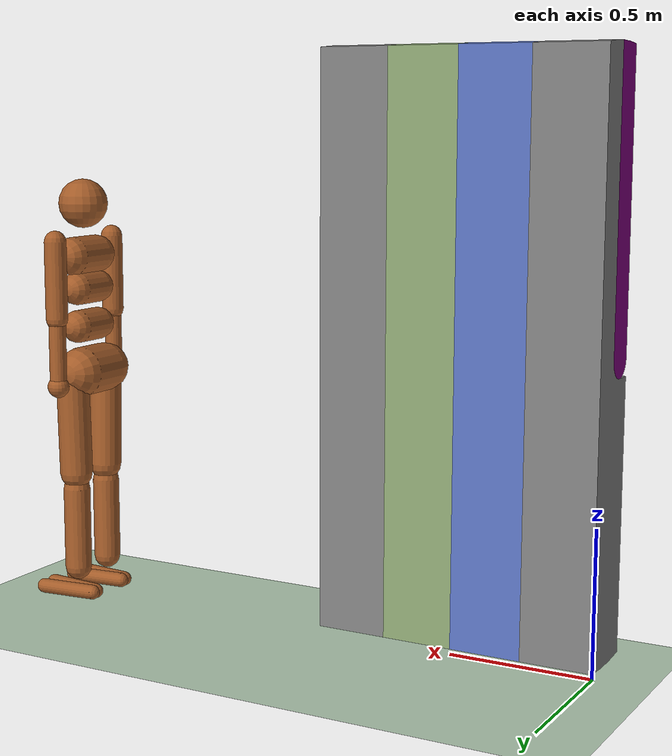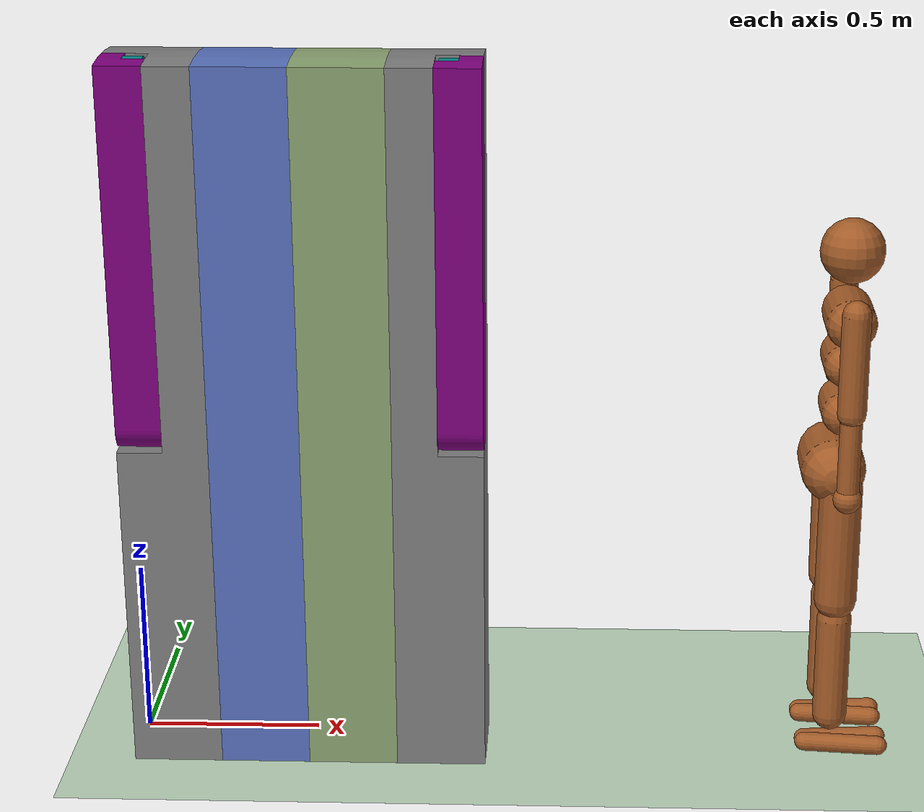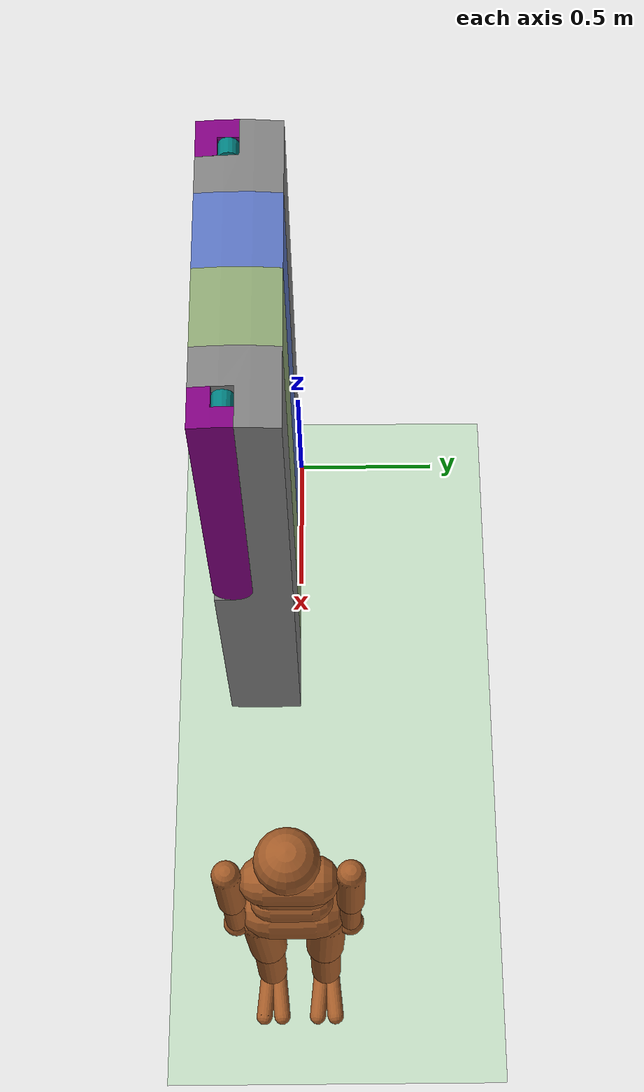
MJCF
<mujoco>
    <compiler meshdir="meshes" />
    <compiler angle="degree"/>

    <option timestep="0.001" integrator="RK4" gravity="0 0 -9.81"/>

    <default>
        <joint limited="true" damping="30" armature="0.05" stiffness="0" actuatorfrcrange="-400 400"/>
        <geom condim="3" friction="1.2 0.005 0.0001" density="100" contype="0" conaffinity="0"/>
        <motor ctrllimited="true" ctrlrange="-1 1" gear="120"/>
        <default class="body">
            <geom type="capsule" condim="1" friction=".7" solimp=".9 .99 .003" solref=".015 1"
            material="body" group="1" contype="1" conaffinity="1"/>
            <default class="thigh">
                <geom size=".06"/>
            </default>
            <default class="shin">
                <geom fromto="0 0 0 0 0 -.3" size=".049"/>
            </default>
            <default class="foot">
                <geom size=".027"/>
                <default class="foot1">
                    <geom fromto="-.07 -.01 0 .14 -.03 0"/>
                </default>
                <default class="foot2">
                    <geom fromto="-.07 .01 0 .14  .03 0"/>
                </default>
            </default>
            <default class="arm_upper">
                <geom size=".04"/>
            </default>
            <default class="arm_lower">
                <geom size=".031"/>
            </default>
            <default class="hand">
                <geom type="sphere" size=".04"/>
            </default>
        </default>
    </default>

    <asset>
    <!--this scale makes it so that the robot is 1 meter in height, assuming mujoco base units are in meters-->
        <mesh name="base" file="base_link.STL" scale="0.002 0.002 0.002" />
        <mesh name="middle_left" file="left_middle_link.STL" scale="0.002 0.002 0.002" />
        <mesh name="left" file="left_link.STL" scale="0.002 0.002 0.002" />
        <mesh name="left_upper_arm" file="left_arm_upper_link.STL" scale="0.002 0.002 0.002" />
        <mesh name="left_lower_arm" file="left_arm_lower_link_trimmed_extra.STL" scale="0.002 0.002 0.002" />
        <mesh name="right" file="right_link.STL" scale="0.002 0.002 0.002" />
        <mesh name="right_upper_arm" file="right_arm_upper_link.STL" scale="0.002 0.002 0.002" />
        <mesh name="right_lower_arm" file="right_arm_lower_link_trimmed_extra.STL" scale="0.002 0.002 0.002" />
        <texture name="body" type="cube" builtin="flat" mark="cross" width="128" height="128" rgb1="0.8 0.6 0.4" rgb2="0.8 0.6 0.4" markrgb="1 1 1"/>
        <material name="body" texture="body" texuniform="true" rgba="0.8 0.6 .4 1"/>
    </asset>

    <worldbody>
        <light name="sun" pos="0 0 6" dir="0 0 -1" diffuse="1 1 1" specular="0.3 0.3 0.3"/>
        <geom name="floor" type="plane" size="50 50 0.1" rgba="0.75 0.85 0.75 1" friction="1.0 0.005 0.0001" contype="1" conaffinity="1" />
        <!--WHOLE ROBOT NAME-->
        <body name="tars_robot" euler="90 0 0">
        <freejoint name="root"/>
            <!--BASE-->
            <body name="base_link">
                <geom type="mesh" mesh="base" rgba="0.35 0.45 0.75 1" contype="1" conaffinity="0" />
                <!--LEFT CHAIN-->
                <body name="left_base_link">
                    <joint name="r_mm" type="hinge" axis="1 0 0" pos="0 1 0.15" range="-355 355" damping="100" />
                    <joint name="ud_mm" type="slide" axis="0 1 0" range="-0.1 0.1" damping="100" actuatorfrcrange="-400 400"/>
                    <geom type="mesh" mesh="middle_left" rgba="0.55 0.65 0.45 1" contype="1" conaffinity="0" />
                    <body name="left_link">
                        <joint name="r_lm" type="hinge" axis="1 0 0" pos="0 1 0.15" range="-355 355" damping="100" />
                        <joint name="ud_lm" type="slide" axis="0 1 0" range="-0.1 0.1" damping="100" actuatorfrcrange="-400 400"/>
                        <geom type="mesh" mesh="left" rgba="0.5 0.5 0.5 1" margin="0.0003" gap="0.0001" solref="0.01 1" solimp="0.9 0.95 0.001" contype="1" conaffinity="0" />
                        <body name="left_upper_arm">
                            <joint name="r_lu" type="hinge" axis="1 0 0" pos="0 1 0.2" range="0 270" damping="100" />
                            <geom name="left_upper_arm_geom" type="mesh" mesh="left_upper_arm" rgba="0.5 0 0.5 1" margin="0.0003" gap="0.0001" solref="0.01 1" solimp="0.9 0.95 0.001" contype="1" conaffinity="0" />
                            <body name="left_lower_arm">
                                <joint name="r_ll" type="hinge" axis="1 0 0" pos="0 2 0.15" range="0 355" damping="100" />
                                <geom name="left_lower_arm_geom" type="mesh" mesh="left_lower_arm" rgba="0 0.5 0.5 1" margin="0.0003" gap="0.0001" solref="0.01 1" solimp="0.9 0.95 0.001" contype="1" conaffinity="0" />
                            </body>
                        </body>
                    </body>
                </body>
                <!--RIGHT CHAIN-->
                <body name="right_link">
                    <joint name="r_rm" type="hinge" axis="1 0 0" pos="0 1 0.15" range="-355 355" damping="100" />
                    <joint name="ud_rm" type="slide" axis="0 1 0" range="-0.1 0.1" damping="100" actuatorfrcrange="-400 400"/>
                    <geom type="mesh" mesh="right" rgba="0.5 0.5 0.5 1" contype="1" conaffinity="0" />
                    <body name="right_upper_arm">
                        <joint name="r_ru" type="hinge" axis="1 0 0" pos="0 1 0.2" range="0 270" damping="100" />
                        <geom name="right_upper_arm_geom" type="mesh" mesh="right_upper_arm" rgba="0.5 0 0.5 1" contype="1" conaffinity="0" />
                        <body name="right_lower_arm">
                            <joint name="r_rl" type="hinge" axis="1 0 0" pos="0 2 0.15" range="0 355" damping="100" />
                            <geom name="right_lower_arm_geom" type="mesh" mesh="right_lower_arm" rgba="0 0.5 0.5 1" contype="1" conaffinity="0" />
                        </body>
                    </body>
                </body>
            </body>
        </body>
        <body name="human_torso" pos="2 0 1.282" childclass="body">
        <freejoint name="human_root"/>
        <geom name="human_torso" fromto="0 -.07 0 0 .07 0" size=".07"/>
        <geom name="waist_upper" fromto="-.01 -.06 -.12 -.01 .06 -.12" size=".06"/>
        <body name="head" pos="0 0 .19">
            <geom name="head" type="sphere" size=".09"/>
        </body>
        <body name="waist_lower" pos="-.01 0 -.26">
            <geom name="waist_lower" fromto="0 -.06 0 0 .06 0" size=".06"/>
            <body name="pelvis" pos="0 0 -.165">
            <geom name="butt" fromto="-.02 -.07 0 -.02 .07 0" size=".09"/>
            <body name="thigh_right" pos="0 -.1 -.04">
                <geom name="thigh_right" fromto="0 0 0 0 .01 -.34" class="thigh"/>
                <body name="shin_right" pos="0 .01 -.4">
                <geom name="shin_right" class="shin"/>
                <body name="foot_right" pos="0 0 -.39">
                    <geom name="foot1_right" class="foot1"/>
                    <geom name="foot2_right" class="foot2"/>
                </body>
                </body>
            </body>
            <body name="thigh_left" pos="0 .1 -.04">
                <geom name="thigh_left" fromto="0 0 0 0 -.01 -.34" class="thigh"/>
                <body name="shin_left" pos="0 -.01 -.4">
                <geom name="shin_left" fromto="0 0 0 0 0 -.3" class="shin"/>
                <body name="foot_left" pos="0 0 -.39">
                    <geom name="foot1_left" class="foot1"/>
                    <geom name="foot2_left" class="foot2"/>
                </body>
                </body>
            </body>
            </body>
        </body>
        <body name="upper_arm_right" pos="0 -.17 .06">
            <geom name="upper_arm_right" fromto="0 0 0 0 0 -.28" class="arm_upper"/>
            <body name="lower_arm_right" pos="0 0 -.28">
            <geom name="lower_arm_right" fromto="0 0 0 0 0 -.25" class="arm_lower"/>
            <body name="hand_right" pos="0 0 -.25">
                <geom name="hand_right" zaxis="0 0 -1" class="hand"/>
            </body>
            </body>
        </body>
        <body name="upper_arm_left" pos="0 .17 .06">
            <geom name="upper_arm_left" fromto="0 0 0 0 0 -.28" class="arm_upper"/>
            <body name="lower_arm_left" pos="0 0 -.28">
            <geom name="lower_arm_left" fromto="0 0 0 0 0 -.25" class="arm_lower"/>
            <body name="hand_left" pos="0 0 -.25">
                <geom name="hand_left" zaxis="0 0 -1" class="hand"/>
            </body>
            </body>
        </body>
        </body>
    </worldbody>

    <contact>
        <exclude body1="waist_lower" body2="thigh_right"/>
        <exclude body1="waist_lower" body2="thigh_left"/>
    </contact>

    <actuator>
        <position name="ud_mm_pos" joint="ud_mm" kp="2" ctrlrange="-20 20"/>
        <position name="r_mm_pos" joint="r_mm" kp="2" ctrlrange="-355 355"/>
        <position name="ud_lm_pos" joint="ud_lm" kp="2" ctrlrange="-20 20"/>
        <position name="r_lm_pos" joint="r_lm" kp="2" ctrlrange="-355 355"/>
        <position name="r_lu_pos" joint="r_lu" kp="2" ctrlrange="0 355"/>
        <position name="r_ll_pos" joint="r_ll" kp="2" ctrlrange="0 355"/>
        <position name="ud_rm_pos" joint="ud_rm" kp="2" ctrlrange="-20 20"/>
        <position name="r_rm_pos" joint="r_rm" kp="2" ctrlrange="-355 355"/>
        <position name="r_ru_pos" joint="r_ru" kp="2" ctrlrange="0 355"/>
        <position name="r_rl_pos" joint="r_rl" kp="2" ctrlrange="0 355"/>
    </actuator>

    <keyframe>
        <!--         base link x y z    w     x   y z rm um rl ul? rul rll  rr ur? rur rul  human x y    z-->
        <key name="init" qpos="0 0 0.2 0.5 0.866 0 0 0  0  -1  0   2  2    -1 0   2   2          0 -1.4 1.2 0.707 0 -0.707 0"/>
    </keyframe>

</mujoco>
